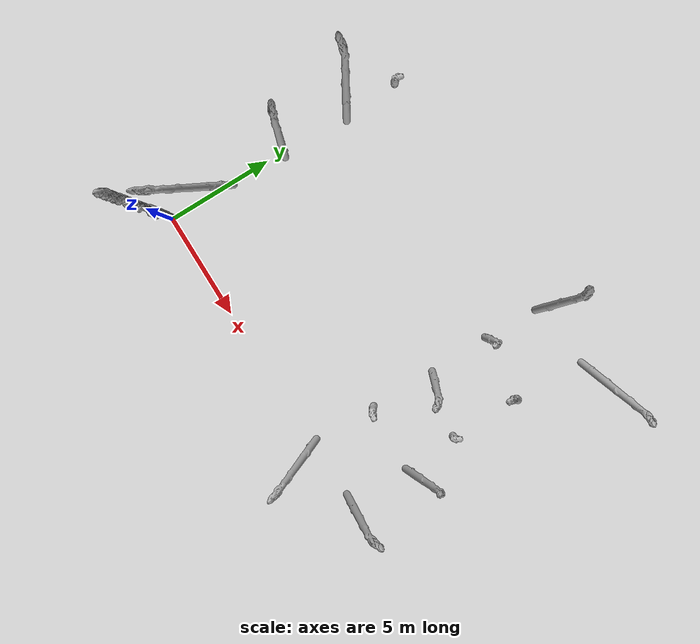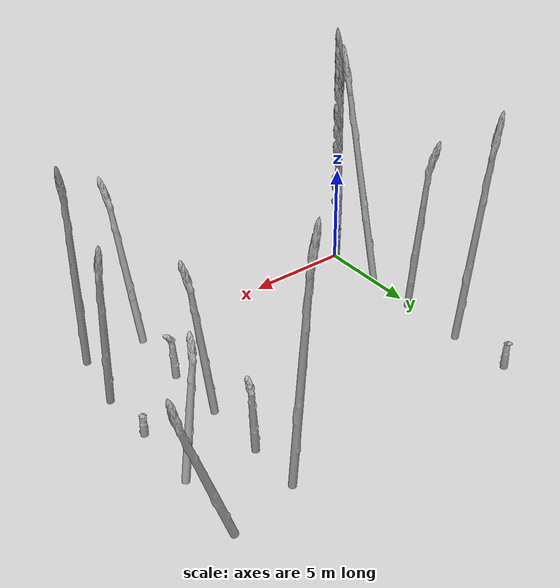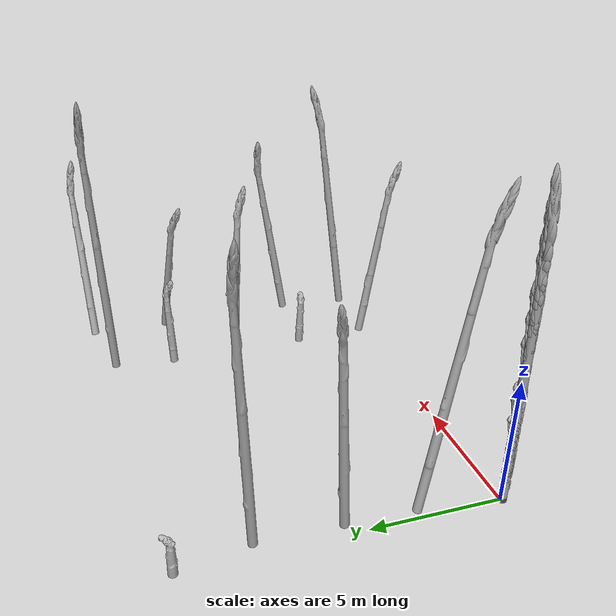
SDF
<sdf version="1.6">
 <world name="default">
  <model name="asparagus_17">
   <pose>11.8439 0.267571 0 -0.007101 0.176118 -1.32682</pose>
   <static>1</static>
   <link name="asparagus_17">
    <visual name="visual">
     <geometry>
      <mesh><uri>model://Asparagus/meshes/asparagus.obj</uri><scale>0.4 0.4 0.398579</scale></mesh>
     </geometry>
    </visual>
    <collision name="collision">
     <geometry>
      <mesh><uri>model://Asparagus/meshes/asparagus.obj</uri><scale>0.4 0.4 0.398579</scale></mesh>
     </geometry>
    </collision>
   </link>
  </model>
  <model name="asparagus_20">
   <pose>12.0371 3.27508 0 0.026608 0.017194 -0.187645</pose>
   <static>1</static>
   <link name="asparagus_20">
    <visual name="visual">
     <geometry>
      <mesh><uri>model://Asparagus/meshes/asparagus.obj</uri><scale>0.4 0.4 0.115517</scale></mesh>
     </geometry>
    </visual>
    <collision name="collision">
     <geometry>
      <mesh><uri>model://Asparagus/meshes/asparagus.obj</uri><scale>0.4 0.4 0.115517</scale></mesh>
     </geometry>
    </collision>
   </link>
  </model>
  <model name="asparagus_23">
   <pose>11.9764 6.2677 0 -0.081512 0.067317 -1.3699</pose>
   <static>1</static>
   <link name="asparagus_23">
    <visual name="visual">
     <geometry>
      <mesh><uri>model://Asparagus/meshes/asparagus.obj</uri><scale>0.4 0.4 0.369577</scale></mesh>
     </geometry>
    </visual>
    <collision name="collision">
     <geometry>
      <mesh><uri>model://Asparagus/meshes/asparagus.obj</uri><scale>0.4 0.4 0.369577</scale></mesh>
     </geometry>
    </collision>
   </link>
  </model>
  <model name="asparagus_26">
   <pose>11.8961 9.0863 0 -0.070392 -0.070972 -1.7148</pose>
   <static>1</static>
   <link name="asparagus_26">
    <visual name="visual">
     <geometry>
      <mesh><uri>model://Asparagus/meshes/asparagus.obj</uri><scale>0.4 0.4 0.190093</scale></mesh>
     </geometry>
    </visual>
    <collision name="collision">
     <geometry>
      <mesh><uri>model://Asparagus/meshes/asparagus.obj</uri><scale>0.4 0.4 0.190093</scale></mesh>
     </geometry>
    </collision>
   </link>
  </model>
  <model name="asparagus_29">
   <pose>11.9635 11.7138 0 0.062071 0.00424 -2.77268</pose>
   <static>1</static>
   <link name="asparagus_29">
    <visual name="visual">
     <geometry>
      <mesh><uri>model://Asparagus/meshes/asparagus.obj</uri><scale>0.4 0.4 0.583064</scale></mesh>
     </geometry>
    </visual>
    <collision name="collision">
     <geometry>
      <mesh><uri>model://Asparagus/meshes/asparagus.obj</uri><scale>0.4 0.4 0.583064</scale></mesh>
     </geometry>
    </collision>
   </link>
  </model>
  <model name="asparagus_47">
   <pose>14.7242 0.25307 0 -0.056968 0.118645 0.714668</pose>
   <static>1</static>
   <link name="asparagus_47">
    <visual name="visual">
     <geometry>
      <mesh><uri>model://Asparagus/meshes/asparagus.obj</uri><scale>0.4 0.4 0.528957</scale></mesh>
     </geometry>
    </visual>
    <collision name="collision">
     <geometry>
      <mesh><uri>model://Asparagus/meshes/asparagus.obj</uri><scale>0.4 0.4 0.528957</scale></mesh>
     </geometry>
    </collision>
   </link>
  </model>
  <model name="asparagus_49">
   <pose>0.072982 3.13363 0 -0.138591 0.114119 -2.14707</pose>
   <static>1</static>
   <link name="asparagus_49">
    <visual name="visual">
     <geometry>
      <mesh><uri>model://Asparagus/meshes/asparagus.obj</uri><scale>0.4 0.4 0.583452</scale></mesh>
     </geometry>
    </visual>
    <collision name="collision">
     <geometry>
      <mesh><uri>model://Asparagus/meshes/asparagus.obj</uri><scale>0.4 0.4 0.583452</scale></mesh>
     </geometry>
    </collision>
   </link>
  </model>
  <model name="asparagus_50">
   <pose>14.9824 2.95962 0 0.076431 -0.16122 -2.35197</pose>
   <static>1</static>
   <link name="asparagus_50">
    <visual name="visual">
     <geometry>
      <mesh><uri>model://Asparagus/meshes/asparagus.obj</uri><scale>0.4 0.4 0.417821</scale></mesh>
     </geometry>
    </visual>
    <collision name="collision">
     <geometry>
      <mesh><uri>model://Asparagus/meshes/asparagus.obj</uri><scale>0.4 0.4 0.417821</scale></mesh>
     </geometry>
    </collision>
   </link>
  </model>
  <model name="asparagus_52">
   <pose>0.223238 5.84276 0 0.049639 0.047766 2.64533</pose>
   <static>1</static>
   <link name="asparagus_52">
    <visual name="visual">
     <geometry>
      <mesh><uri>model://Asparagus/meshes/asparagus.obj</uri><scale>0.4 0.4 0.437858</scale></mesh>
     </geometry>
    </visual>
    <collision name="collision">
     <geometry>
      <mesh><uri>model://Asparagus/meshes/asparagus.obj</uri><scale>0.4 0.4 0.437858</scale></mesh>
     </geometry>
    </collision>
   </link>
  </model>
  <model name="asparagus_53">
   <pose>15.0115 5.73148 0 0.001792 -0.023866 1.10447</pose>
   <static>1</static>
   <link name="asparagus_53">
    <visual name="visual">
     <geometry>
      <mesh><uri>model://Asparagus/meshes/asparagus.obj</uri><scale>0.4 0.4 0.060752</scale></mesh>
     </geometry>
    </visual>
    <collision name="collision">
     <geometry>
      <mesh><uri>model://Asparagus/meshes/asparagus.obj</uri><scale>0.4 0.4 0.060752</scale></mesh>
     </geometry>
    </collision>
   </link>
  </model>
  <model name="asparagus_55">
   <pose>0.274278 8.95973 0 0.075409 0.002744 -2.73171</pose>
   <static>1</static>
   <link name="asparagus_55">
    <visual name="visual">
     <geometry>
      <mesh><uri>model://Asparagus/meshes/asparagus.obj</uri><scale>0.4 0.4 0.557412</scale></mesh>
     </geometry>
    </visual>
    <collision name="collision">
     <geometry>
      <mesh><uri>model://Asparagus/meshes/asparagus.obj</uri><scale>0.4 0.4 0.557412</scale></mesh>
     </geometry>
    </collision>
   </link>
  </model>
  <model name="asparagus_56">
   <pose>15.1385 8.88031 0 0.172886 0.052029 -1.49686</pose>
   <static>1</static>
   <link name="asparagus_56">
    <visual name="visual">
     <geometry>
      <mesh><uri>model://Asparagus/meshes/asparagus.obj</uri><scale>0.4 0.4 0.313554</scale></mesh>
     </geometry>
    </visual>
    <collision name="collision">
     <geometry>
      <mesh><uri>model://Asparagus/meshes/asparagus.obj</uri><scale>0.4 0.4 0.313554</scale></mesh>
     </geometry>
    </collision>
   </link>
  </model>
  <model name="asparagus_58">
   <pose>0.116041 11.8387 0 0.006795 -0.004692 1.10522</pose>
   <static>1</static>
   <link name="asparagus_58">
    <visual name="visual">
     <geometry>
      <mesh><uri>model://Asparagus/meshes/asparagus.obj</uri><scale>0.4 0.4 0.077505</scale></mesh>
     </geometry>
    </visual>
    <collision name="collision">
     <geometry>
      <mesh><uri>model://Asparagus/meshes/asparagus.obj</uri><scale>0.4 0.4 0.077505</scale></mesh>
     </geometry>
    </collision>
   </link>
  </model>
  <model name="asparagus_59">
   <pose>15.0414 12.1964 0 -0.237156 -0.219815 -2.16619</pose>
   <static>1</static>
   <link name="asparagus_59">
    <visual name="visual">
     <geometry>
      <mesh><uri>model://Asparagus/meshes/asparagus.obj</uri><scale>0.4 0.4 0.39346</scale></mesh>
     </geometry>
    </visual>
    <collision name="collision">
     <geometry>
      <mesh><uri>model://Asparagus/meshes/asparagus.obj</uri><scale>0.4 0.4 0.39346</scale></mesh>
     </geometry>
    </collision>
   </link>
  </model>
  <model name="asparagus_76">
   <static>1</static>
   <link name="asparagus_76">
    <visual name="visual">
     <geometry>
      <mesh><uri>model://Asparagus/meshes/asparagus.obj</uri><scale>0.4 0.4 0.469894</scale></mesh>
     </geometry>
    </visual>
    <collision name="collision">
     <geometry>
      <mesh><uri>model://Asparagus/meshes/asparagus.obj</uri><scale>0.4 0.4 0.469894</scale></mesh>
     </geometry>
    </collision>
   </link>
  </model>
  <model name="asparagus_77">
   <static>1</static>
   <link name="asparagus_77">
    <visual name="visual">
     <geometry>
      <mesh><uri>model://Asparagus/meshes/asparagus.obj</uri><scale>0.4 0.4 0.407465</scale></mesh>
     </geometry>
    </visual>
    <collision name="collision">
     <geometry>
      <mesh><uri>model://Asparagus/meshes/asparagus.obj</uri><scale>0.4 0.4 0.407465</scale></mesh>
     </geometry>
    </collision>
   </link>
  </model>
  <model name="asparagus_78">
   <static>1</static>
   <link name="asparagus_78">
    <visual name="visual">
     <geometry>
      <mesh><uri>model://Asparagus/meshes/asparagus.obj</uri><scale>0.4 0.4 0.209431</scale></mesh>
     </geometry>
    </visual>
    <collision name="collision">
     <geometry>
      <mesh><uri>model://Asparagus/meshes/asparagus.obj</uri><scale>0.4 0.4 0.209431</scale></mesh>
     </geometry>
    </collision>
   </link>
  </model>
  <model name="asparagus_79">
   <static>1</static>
   <link name="asparagus_79">
    <visual name="visual">
     <geometry>
      <mesh><uri>model://Asparagus/meshes/asparagus.obj</uri><scale>0.4 0.4 0.504424</scale></mesh>
     </geometry>
    </visual>
    <collision name="collision">
     <geometry>
      <mesh><uri>model://Asparagus/meshes/asparagus.obj</uri><scale>0.4 0.4 0.504424</scale></mesh>
     </geometry>
    </collision>
   </link>
  </model>
  <model name="asparagus_80">
   <static>1</static>
   <link name="asparagus_80">
    <visual name="visual">
     <geometry>
      <mesh><uri>model://Asparagus/meshes/asparagus.obj</uri><scale>0.4 0.4 0.557386</scale></mesh>
     </geometry>
    </visual>
    <collision name="collision">
     <geometry>
      <mesh><uri>model://Asparagus/meshes/asparagus.obj</uri><scale>0.4 0.4 0.557386</scale></mesh>
     </geometry>
    </collision>
   </link>
  </model>
  <model name="asparagus_81">
   <static>1</static>
   <link name="asparagus_81">
    <visual name="visual">
     <geometry>
      <mesh><uri>model://Asparagus/meshes/asparagus.obj</uri><scale>0.4 0.4 0.499521</scale></mesh>
     </geometry>
    </visual>
    <collision name="collision">
     <geometry>
      <mesh><uri>model://Asparagus/meshes/asparagus.obj</uri><scale>0.4 0.4 0.499521</scale></mesh>
     </geometry>
    </collision>
   </link>
  </model>
  <model name="asparagus_82">
   <static>1</static>
   <link name="asparagus_82">
    <visual name="visual">
     <geometry>
      <mesh><uri>model://Asparagus/meshes/asparagus.obj</uri><scale>0.4 0.4 0.364218</scale></mesh>
     </geometry>
    </visual>
    <collision name="collision">
     <geometry>
      <mesh><uri>model://Asparagus/meshes/asparagus.obj</uri><scale>0.4 0.4 0.364218</scale></mesh>
     </geometry>
    </collision>
   </link>
  </model>
  <model name="asparagus_83">
   <static>1</static>
   <link name="asparagus_83">
    <visual name="visual">
     <geometry>
      <mesh><uri>model://Asparagus/meshes/asparagus.obj</uri><scale>0.4 0.4 0.415931</scale></mesh>
     </geometry>
    </visual>
    <collision name="collision">
     <geometry>
      <mesh><uri>model://Asparagus/meshes/asparagus.obj</uri><scale>0.4 0.4 0.415931</scale></mesh>
     </geometry>
    </collision>
   </link>
  </model>
  <model name="asparagus_84">
   <static>1</static>
   <link name="asparagus_84">
    <visual name="visual">
     <geometry>
      <mesh><uri>model://Asparagus/meshes/asparagus.obj</uri><scale>0.4 0.4 0.216791</scale></mesh>
     </geometry>
    </visual>
    <collision name="collision">
     <geometry>
      <mesh><uri>model://Asparagus/meshes/asparagus.obj</uri><scale>0.4 0.4 0.216791</scale></mesh>
     </geometry>
    </collision>
   </link>
  </model>
  <model name="asparagus_85">
   <static>1</static>
   <link name="asparagus_85">
    <visual name="visual">
     <geometry>
      <mesh><uri>model://Asparagus/meshes/asparagus.obj</uri><scale>0.4 0.4 0.53904</scale></mesh>
     </geometry>
    </visual>
    <collision name="collision">
     <geometry>
      <mesh><uri>model://Asparagus/meshes/asparagus.obj</uri><scale>0.4 0.4 0.53904</scale></mesh>
     </geometry>
    </collision>
   </link>
  </model>
  <model name="asparagus_86">
   <static>1</static>
   <link name="asparagus_86">
    <visual name="visual">
     <geometry>
      <mesh><uri>model://Asparagus/meshes/asparagus.obj</uri><scale>0.4 0.4 0.594498</scale></mesh>
     </geometry>
    </visual>
    <collision name="collision">
     <geometry>
      <mesh><uri>model://Asparagus/meshes/asparagus.obj</uri><scale>0.4 0.4 0.594498</scale></mesh>
     </geometry>
    </collision>
   </link>
  </model>
  <model name="asparagus_87">
   <static>1</static>
   <link name="asparagus_87">
    <visual name="visual">
     <geometry>
      <mesh><uri>model://Asparagus/meshes/asparagus.obj</uri><scale>0.4 0.4 0.168104</scale></mesh>
     </geometry>
    </visual>
    <collision name="collision">
     <geometry>
      <mesh><uri>model://Asparagus/meshes/asparagus.obj</uri><scale>0.4 0.4 0.168104</scale></mesh>
     </geometry>
    </collision>
   </link>
  </model>
  <model name="asparagus_88">
   <static>1</static>
   <link name="asparagus_88">
    <visual name="visual">
     <geometry>
      <mesh><uri>model://Asparagus/meshes/asparagus.obj</uri><scale>0.4 0.4 0.319678</scale></mesh>
     </geometry>
    </visual>
    <collision name="collision">
     <geometry>
      <mesh><uri>model://Asparagus/meshes/asparagus.obj</uri><scale>0.4 0.4 0.319678</scale></mesh>
     </geometry>
    </collision>
   </link>
  </model>
  <model name="asparagus_89">
   <static>1</static>
   <link name="asparagus_89">
    <visual name="visual">
     <geometry>
      <mesh><uri>model://Asparagus/meshes/asparagus.obj</uri><scale>0.4 0.4 0.234013</scale></mesh>
     </geometry>
    </visual>
    <collision name="collision">
     <geometry>
      <mesh><uri>model://Asparagus/meshes/asparagus.obj</uri><scale>0.4 0.4 0.234013</scale></mesh>
     </geometry>
    </collision>
   </link>
  </model>
 </world>
</sdf>
